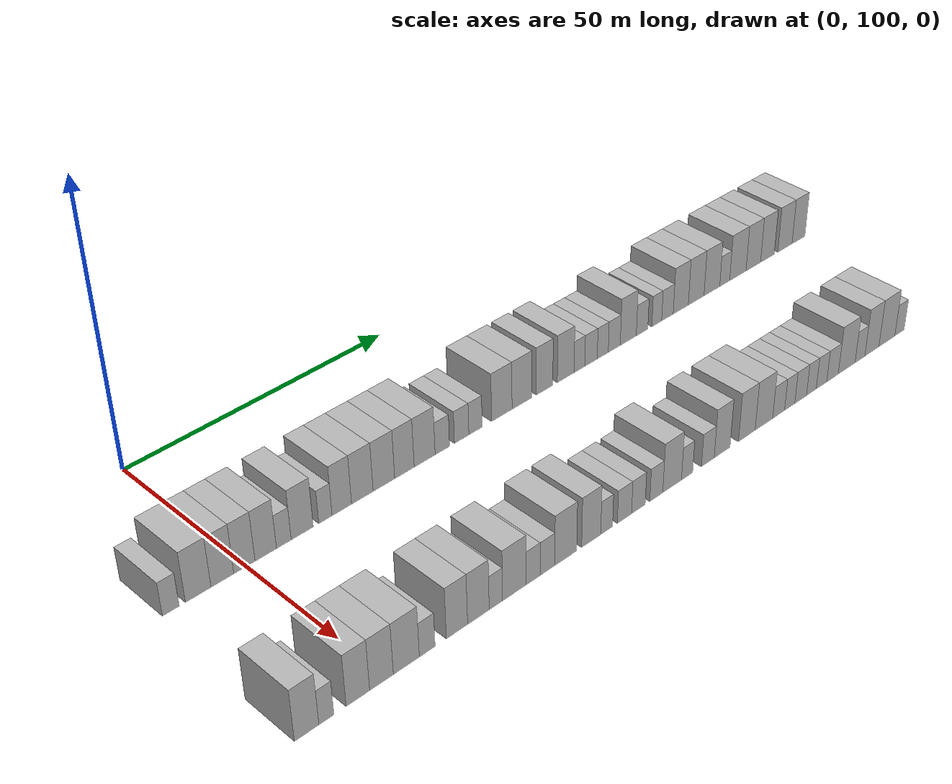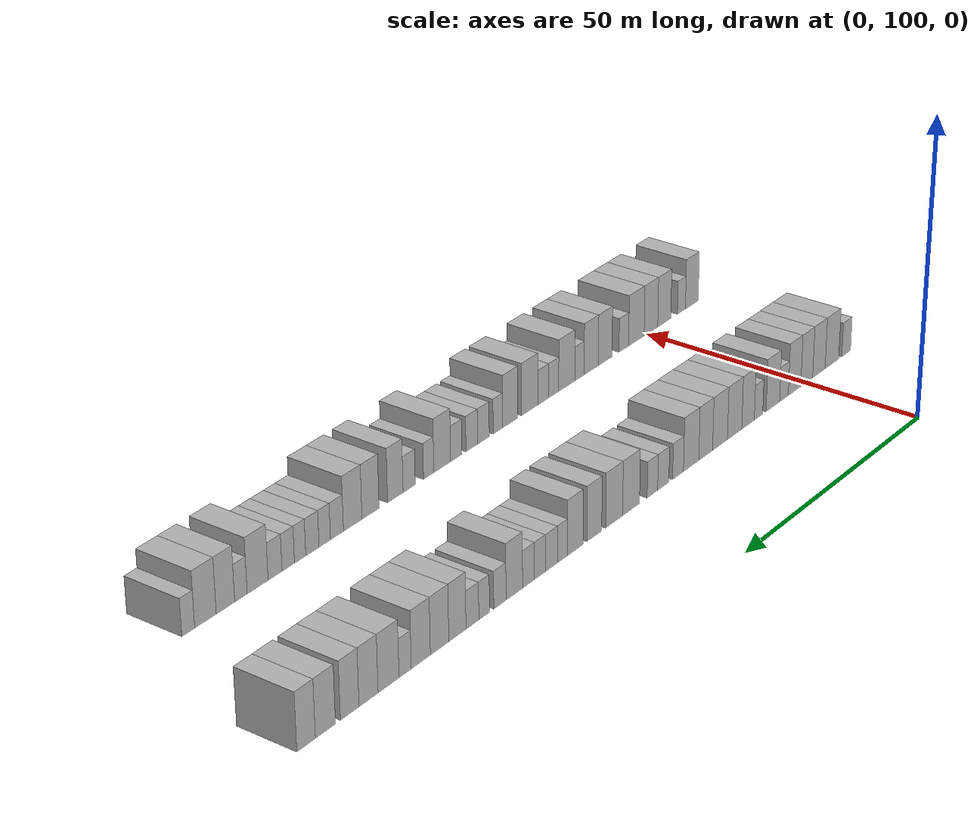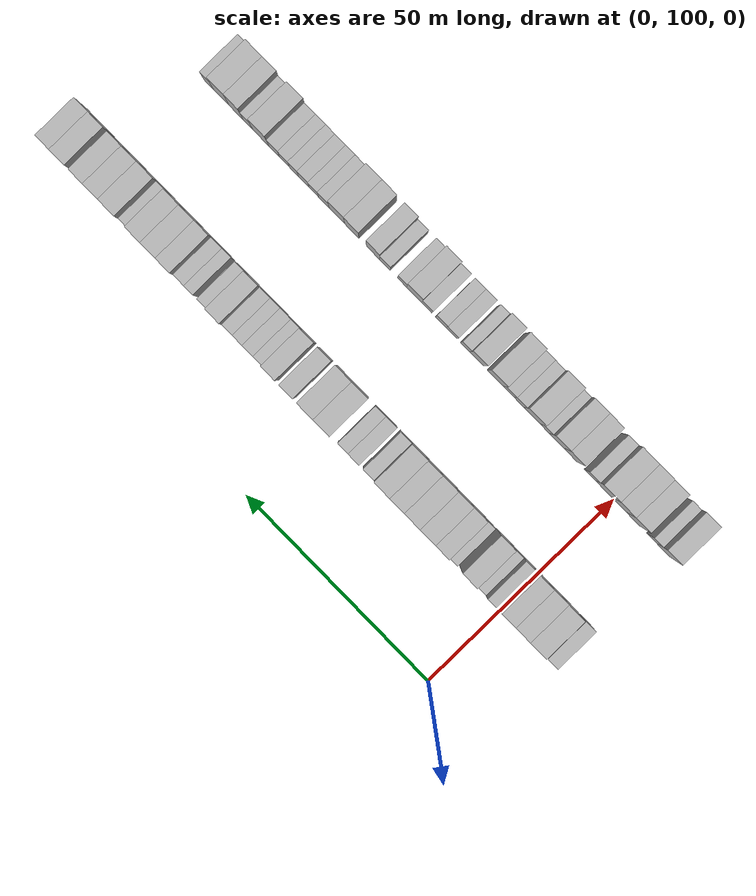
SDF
<sdf version="1.6">
 <world name="default">
  <model name="building_128">
   <static>1</static>
   <pose>25.0000 87.3961 0 0.000000 0.000000 0.000000</pose>
   <link name="link">
    <pose>0 0 3.00 0 0 0</pose>
    <collision name="collision"><geometry><box><size>10.0000 2.7502 6.0000</size></box></geometry></collision>
    <visual name="visual">
     <cast_shadows>0</cast_shadows>
     <geometry><box><size>10.0000 2.7502 6.0000</size></box></geometry>
     <material>
      <script>
       <uri>model://HANNAS_wall/materials/scripts</uri>
       <uri>model://HANNAS_wall/materials/textures</uri>
       <name>vrc/HANNAS_wall</name>
      </script>
     </material>
    </visual>
   </link>
  </model>
  <model name="building_129">
   <static>1</static>
   <pose>25.0000 91.8990 0 0.000000 0.000000 0.000000</pose>
   <link name="link">
    <pose>0 0 4.50 0 0 0</pose>
    <collision name="collision"><geometry><box><size>10.0000 4.2556 9.0000</size></box></geometry></collision>
    <visual name="visual">
     <cast_shadows>0</cast_shadows>
     <geometry><box><size>10.0000 4.2556 9.0000</size></box></geometry>
     <material>
      <script>
       <uri>model://HANNAS_wall/materials/scripts</uri>
       <uri>model://HANNAS_wall/materials/textures</uri>
       <name>vrc/HANNAS_wall</name>
      </script>
     </material>
    </visual>
   </link>
  </model>
  <model name="building_130">
   <static>1</static>
   <pose>25.0000 95.9598 0 0.000000 0.000000 0.000000</pose>
   <link name="link">
    <pose>0 0 4.50 0 0 0</pose>
    <collision name="collision"><geometry><box><size>10.0000 3.8661 9.0000</size></box></geometry></collision>
    <visual name="visual">
     <cast_shadows>0</cast_shadows>
     <geometry><box><size>10.0000 3.8661 9.0000</size></box></geometry>
     <material>
      <script>
       <uri>model://HANNAS_wall/materials/scripts</uri>
       <uri>model://HANNAS_wall/materials/textures</uri>
       <name>vrc/HANNAS_wall</name>
      </script>
     </material>
    </visual>
   </link>
  </model>
  <model name="building_131">
   <static>1</static>
   <pose>25.0000 99.7192 0 0.000000 0.000000 0.000000</pose>
   <link name="link">
    <pose>0 0 4.50 0 0 0</pose>
    <collision name="collision"><geometry><box><size>10.0000 3.6528 9.0000</size></box></geometry></collision>
    <visual name="visual">
     <cast_shadows>0</cast_shadows>
     <geometry><box><size>10.0000 3.6528 9.0000</size></box></geometry>
     <material>
      <script>
       <uri>model://HANNAS_wall/materials/scripts</uri>
       <uri>model://HANNAS_wall/materials/textures</uri>
       <name>vrc/HANNAS_wall</name>
      </script>
     </material>
    </visual>
   </link>
  </model>
  <model name="building_132">
   <static>1</static>
   <pose>25.0000 103.4227 0 0.000000 0.000000 0.000000</pose>
   <link name="link">
    <pose>0 0 4.50 0 0 0</pose>
    <collision name="collision"><geometry><box><size>10.0000 3.7542 9.0000</size></box></geometry></collision>
    <visual name="visual">
     <cast_shadows>0</cast_shadows>
     <geometry><box><size>10.0000 3.7542 9.0000</size></box></geometry>
     <material>
      <script>
       <uri>model://HANNAS_wall/materials/scripts</uri>
       <uri>model://HANNAS_wall/materials/textures</uri>
       <name>vrc/HANNAS_wall</name>
      </script>
     </material>
    </visual>
   </link>
  </model>
  <model name="building_133">
   <static>1</static>
   <pose>25.0000 106.6087 0 0.000000 0.000000 0.000000</pose>
   <link name="link">
    <pose>0 0 3.00 0 0 0</pose>
    <collision name="collision"><geometry><box><size>10.0000 2.6178 6.0000</size></box></geometry></collision>
    <visual name="visual">
     <cast_shadows>0</cast_shadows>
     <geometry><box><size>10.0000 2.6178 6.0000</size></box></geometry>
     <material>
      <script>
       <uri>model://HANNAS_wall/materials/scripts</uri>
       <uri>model://HANNAS_wall/materials/textures</uri>
       <name>vrc/HANNAS_wall</name>
      </script>
     </material>
    </visual>
   </link>
  </model>
  <model name="building_134">
   <static>1</static>
   <pose>25.0000 109.9118 0 0.000000 0.000000 0.000000</pose>
   <link name="link">
    <pose>0 0 4.50 0 0 0</pose>
    <collision name="collision"><geometry><box><size>10.0000 3.9884 9.0000</size></box></geometry></collision>
    <visual name="visual">
     <cast_shadows>0</cast_shadows>
     <geometry><box><size>10.0000 3.9884 9.0000</size></box></geometry>
     <material>
      <script>
       <uri>model://HANNAS_wall/materials/scripts</uri>
       <uri>model://HANNAS_wall/materials/textures</uri>
       <name>vrc/HANNAS_wall</name>
      </script>
     </material>
    </visual>
   </link>
  </model>
  <model name="building_135">
   <static>1</static>
   <pose>25.0000 114.1309 0 0.000000 0.000000 0.000000</pose>
   <link name="link">
    <pose>0 0 3.00 0 0 0</pose>
    <collision name="collision"><geometry><box><size>10.0000 2.4498 6.0000</size></box></geometry></collision>
    <visual name="visual">
     <cast_shadows>0</cast_shadows>
     <geometry><box><size>10.0000 2.4498 6.0000</size></box></geometry>
     <material>
      <script>
       <uri>model://HANNAS_wall/materials/scripts</uri>
       <uri>model://HANNAS_wall/materials/textures</uri>
       <name>vrc/HANNAS_wall</name>
      </script>
     </material>
    </visual>
   </link>
  </model>
  <model name="building_136">
   <static>1</static>
   <pose>25.0000 117.1711 0 0.000000 0.000000 0.000000</pose>
   <link name="link">
    <pose>0 0 4.50 0 0 0</pose>
    <collision name="collision"><geometry><box><size>10.0000 3.6306 9.0000</size></box></geometry></collision>
    <visual name="visual">
     <cast_shadows>0</cast_shadows>
     <geometry><box><size>10.0000 3.6306 9.0000</size></box></geometry>
     <material>
      <script>
       <uri>model://HANNAS_wall/materials/scripts</uri>
       <uri>model://HANNAS_wall/materials/textures</uri>
       <name>vrc/HANNAS_wall</name>
      </script>
     </material>
    </visual>
   </link>
  </model>
  <model name="building_137">
   <static>1</static>
   <pose>25.0000 121.0385 0 0.000000 0.000000 0.000000</pose>
   <link name="link">
    <pose>0 0 4.50 0 0 0</pose>
    <collision name="collision"><geometry><box><size>10.0000 4.1043 9.0000</size></box></geometry></collision>
    <visual name="visual">
     <cast_shadows>0</cast_shadows>
     <geometry><box><size>10.0000 4.1043 9.0000</size></box></geometry>
     <material>
      <script>
       <uri>model://HANNAS_wall/materials/scripts</uri>
       <uri>model://HANNAS_wall/materials/textures</uri>
       <name>vrc/HANNAS_wall</name>
      </script>
     </material>
    </visual>
   </link>
  </model>
  <model name="building_138">
   <static>1</static>
   <pose>25.0000 125.1760 0 0.000000 0.000000 0.000000</pose>
   <link name="link">
    <pose>0 0 4.50 0 0 0</pose>
    <collision name="collision"><geometry><box><size>10.0000 4.1706 9.0000</size></box></geometry></collision>
    <visual name="visual">
     <cast_shadows>0</cast_shadows>
     <geometry><box><size>10.0000 4.1706 9.0000</size></box></geometry>
     <material>
      <script>
       <uri>model://HANNAS_wall/materials/scripts</uri>
       <uri>model://HANNAS_wall/materials/textures</uri>
       <name>vrc/HANNAS_wall</name>
      </script>
     </material>
    </visual>
   </link>
  </model>
  <model name="building_139">
   <static>1</static>
   <pose>25.0000 129.1784 0 0.000000 0.000000 0.000000</pose>
   <link name="link">
    <pose>0 0 4.50 0 0 0</pose>
    <collision name="collision"><geometry><box><size>10.0000 3.8342 9.0000</size></box></geometry></collision>
    <visual name="visual">
     <cast_shadows>0</cast_shadows>
     <geometry><box><size>10.0000 3.8342 9.0000</size></box></geometry>
     <material>
      <script>
       <uri>model://HANNAS_wall/materials/scripts</uri>
       <uri>model://HANNAS_wall/materials/textures</uri>
       <name>vrc/HANNAS_wall</name>
      </script>
     </material>
    </visual>
   </link>
  </model>
  <model name="building_140">
   <static>1</static>
   <pose>25.0000 133.1956 0 0.000000 0.000000 0.000000</pose>
   <link name="link">
    <pose>0 0 4.50 0 0 0</pose>
    <collision name="collision"><geometry><box><size>10.0000 4.2002 9.0000</size></box></geometry></collision>
    <visual name="visual">
     <cast_shadows>0</cast_shadows>
     <geometry><box><size>10.0000 4.2002 9.0000</size></box></geometry>
     <material>
      <script>
       <uri>model://HANNAS_wall/materials/scripts</uri>
       <uri>model://HANNAS_wall/materials/textures</uri>
       <name>vrc/HANNAS_wall</name>
      </script>
     </material>
    </visual>
   </link>
  </model>
  <model name="building_141">
   <static>1</static>
   <pose>25.0000 136.7625 0 0.000000 0.000000 0.000000</pose>
   <link name="link">
    <pose>0 0 3.00 0 0 0</pose>
    <collision name="collision"><geometry><box><size>10.0000 2.9337 6.0000</size></box></geometry></collision>
    <visual name="visual">
     <cast_shadows>0</cast_shadows>
     <geometry><box><size>10.0000 2.9337 6.0000</size></box></geometry>
     <material>
      <script>
       <uri>model://HANNAS_wall/materials/scripts</uri>
       <uri>model://HANNAS_wall/materials/textures</uri>
       <name>vrc/HANNAS_wall</name>
      </script>
     </material>
    </visual>
   </link>
  </model>
  <model name="building_142">
   <static>1</static>
   <pose>25.0000 140.7261 0 0.000000 0.000000 0.000000</pose>
   <link name="link">
    <pose>0 0 3.00 0 0 0</pose>
    <collision name="collision"><geometry><box><size>10.0000 2.9936 6.0000</size></box></geometry></collision>
    <visual name="visual">
     <cast_shadows>0</cast_shadows>
     <geometry><box><size>10.0000 2.9936 6.0000</size></box></geometry>
     <material>
      <script>
       <uri>model://HANNAS_wall/materials/scripts</uri>
       <uri>model://HANNAS_wall/materials/textures</uri>
       <name>vrc/HANNAS_wall</name>
      </script>
     </material>
    </visual>
   </link>
  </model>
  <model name="building_143">
   <static>1</static>
   <pose>25.0000 143.6168 0 0.000000 0.000000 0.000000</pose>
   <link name="link">
    <pose>0 0 3.00 0 0 0</pose>
    <collision name="collision"><geometry><box><size>10.0000 2.7877 6.0000</size></box></geometry></collision>
    <visual name="visual">
     <cast_shadows>0</cast_shadows>
     <geometry><box><size>10.0000 2.7877 6.0000</size></box></geometry>
     <material>
      <script>
       <uri>model://HANNAS_wall/materials/scripts</uri>
       <uri>model://HANNAS_wall/materials/textures</uri>
       <name>vrc/HANNAS_wall</name>
      </script>
     </material>
    </visual>
   </link>
  </model>
  <model name="building_144">
   <static>1</static>
   <pose>25.0000 149.2042 0 0.000000 0.000000 0.000000</pose>
   <link name="link">
    <pose>0 0 4.50 0 0 0</pose>
    <collision name="collision"><geometry><box><size>10.0000 4.3871 9.0000</size></box></geometry></collision>
    <visual name="visual">
     <cast_shadows>0</cast_shadows>
     <geometry><box><size>10.0000 4.3871 9.0000</size></box></geometry>
     <material>
      <script>
       <uri>model://HANNAS_wall/materials/scripts</uri>
       <uri>model://HANNAS_wall/materials/textures</uri>
       <name>vrc/HANNAS_wall</name>
      </script>
     </material>
    </visual>
   </link>
  </model>
  <model name="building_145">
   <static>1</static>
   <pose>25.0000 153.5591 0 0.000000 0.000000 0.000000</pose>
   <link name="link">
    <pose>0 0 4.50 0 0 0</pose>
    <collision name="collision"><geometry><box><size>10.0000 4.3227 9.0000</size></box></geometry></collision>
    <visual name="visual">
     <cast_shadows>0</cast_shadows>
     <geometry><box><size>10.0000 4.3227 9.0000</size></box></geometry>
     <material>
      <script>
       <uri>model://HANNAS_wall/materials/scripts</uri>
       <uri>model://HANNAS_wall/materials/textures</uri>
       <name>vrc/HANNAS_wall</name>
      </script>
     </material>
    </visual>
   </link>
  </model>
  <model name="building_146">
   <static>1</static>
   <pose>25.0000 158.5569 0 0.000000 0.000000 0.000000</pose>
   <link name="link">
    <pose>0 0 4.50 0 0 0</pose>
    <collision name="collision"><geometry><box><size>10.0000 3.6729 9.0000</size></box></geometry></collision>
    <visual name="visual">
     <cast_shadows>0</cast_shadows>
     <geometry><box><size>10.0000 3.6729 9.0000</size></box></geometry>
     <material>
      <script>
       <uri>model://HANNAS_wall/materials/scripts</uri>
       <uri>model://HANNAS_wall/materials/textures</uri>
       <name>vrc/HANNAS_wall</name>
      </script>
     </material>
    </visual>
   </link>
  </model>
  <model name="building_147">
   <static>1</static>
   <pose>25.0000 163.3041 0 0.000000 0.000000 0.000000</pose>
   <link name="link">
    <pose>0 0 4.50 0 0 0</pose>
    <collision name="collision"><geometry><box><size>10.0000 3.8214 9.0000</size></box></geometry></collision>
    <visual name="visual">
     <cast_shadows>0</cast_shadows>
     <geometry><box><size>10.0000 3.8214 9.0000</size></box></geometry>
     <material>
      <script>
       <uri>model://HANNAS_wall/materials/scripts</uri>
       <uri>model://HANNAS_wall/materials/textures</uri>
       <name>vrc/HANNAS_wall</name>
      </script>
     </material>
    </visual>
   </link>
  </model>
  <model name="building_148">
   <static>1</static>
   <pose>25.0000 166.4554 0 0.000000 0.000000 0.000000</pose>
   <link name="link">
    <pose>0 0 3.00 0 0 0</pose>
    <collision name="collision"><geometry><box><size>10.0000 2.4813 6.0000</size></box></geometry></collision>
    <visual name="visual">
     <cast_shadows>0</cast_shadows>
     <geometry><box><size>10.0000 2.4813 6.0000</size></box></geometry>
     <material>
      <script>
       <uri>model://HANNAS_wall/materials/scripts</uri>
       <uri>model://HANNAS_wall/materials/textures</uri>
       <name>vrc/HANNAS_wall</name>
      </script>
     </material>
    </visual>
   </link>
  </model>
  <model name="building_149">
   <static>1</static>
   <pose>25.0000 169.1382 0 0.000000 0.000000 0.000000</pose>
   <link name="link">
    <pose>0 0 3.00 0 0 0</pose>
    <collision name="collision"><geometry><box><size>10.0000 2.8843 6.0000</size></box></geometry></collision>
    <visual name="visual">
     <cast_shadows>0</cast_shadows>
     <geometry><box><size>10.0000 2.8843 6.0000</size></box></geometry>
     <material>
      <script>
       <uri>model://HANNAS_wall/materials/scripts</uri>
       <uri>model://HANNAS_wall/materials/textures</uri>
       <name>vrc/HANNAS_wall</name>
      </script>
     </material>
    </visual>
   </link>
  </model>
  <model name="building_150">
   <static>1</static>
   <pose>25.0000 171.8846 0 0.000000 0.000000 0.000000</pose>
   <link name="link">
    <pose>0 0 3.00 0 0 0</pose>
    <collision name="collision"><geometry><box><size>10.0000 2.6085 6.0000</size></box></geometry></collision>
    <visual name="visual">
     <cast_shadows>0</cast_shadows>
     <geometry><box><size>10.0000 2.6085 6.0000</size></box></geometry>
     <material>
      <script>
       <uri>model://HANNAS_wall/materials/scripts</uri>
       <uri>model://HANNAS_wall/materials/textures</uri>
       <name>vrc/HANNAS_wall</name>
      </script>
     </material>
    </visual>
   </link>
  </model>
  <model name="building_151">
   <static>1</static>
   <pose>25.0000 174.6094 0 0.000000 0.000000 0.000000</pose>
   <link name="link">
    <pose>0 0 3.00 0 0 0</pose>
    <collision name="collision"><geometry><box><size>10.0000 2.8411 6.0000</size></box></geometry></collision>
    <visual name="visual">
     <cast_shadows>0</cast_shadows>
     <geometry><box><size>10.0000 2.8411 6.0000</size></box></geometry>
     <material>
      <script>
       <uri>model://HANNAS_wall/materials/scripts</uri>
       <uri>model://HANNAS_wall/materials/textures</uri>
       <name>vrc/HANNAS_wall</name>
      </script>
     </material>
    </visual>
   </link>
  </model>
  <model name="building_152">
   <static>1</static>
   <pose>25.0000 177.9616 0 0.000000 0.000000 0.000000</pose>
   <link name="link">
    <pose>0 0 4.50 0 0 0</pose>
    <collision name="collision"><geometry><box><size>10.0000 3.8633 9.0000</size></box></geometry></collision>
    <visual name="visual">
     <cast_shadows>0</cast_shadows>
     <geometry><box><size>10.0000 3.8633 9.0000</size></box></geometry>
     <material>
      <script>
       <uri>model://HANNAS_wall/materials/scripts</uri>
       <uri>model://HANNAS_wall/materials/textures</uri>
       <name>vrc/HANNAS_wall</name>
      </script>
     </material>
    </visual>
   </link>
  </model>
  <model name="building_153">
   <static>1</static>
   <pose>25.0000 181.3048 0 0.000000 0.000000 0.000000</pose>
   <link name="link">
    <pose>0 0 3.00 0 0 0</pose>
    <collision name="collision"><geometry><box><size>10.0000 2.8230 6.0000</size></box></geometry></collision>
    <visual name="visual">
     <cast_shadows>0</cast_shadows>
     <geometry><box><size>10.0000 2.8230 6.0000</size></box></geometry>
     <material>
      <script>
       <uri>model://HANNAS_wall/materials/scripts</uri>
       <uri>model://HANNAS_wall/materials/textures</uri>
       <name>vrc/HANNAS_wall</name>
      </script>
     </material>
    </visual>
   </link>
  </model>
  <model name="building_154">
   <static>1</static>
   <pose>25.0000 184.9319 0 0.000000 0.000000 0.000000</pose>
   <link name="link">
    <pose>0 0 3.00 0 0 0</pose>
    <collision name="collision"><geometry><box><size>10.0000 2.4312 6.0000</size></box></geometry></collision>
    <visual name="visual">
     <cast_shadows>0</cast_shadows>
     <geometry><box><size>10.0000 2.4312 6.0000</size></box></geometry>
     <material>
      <script>
       <uri>model://HANNAS_wall/materials/scripts</uri>
       <uri>model://HANNAS_wall/materials/textures</uri>
       <name>vrc/HANNAS_wall</name>
      </script>
     </material>
    </visual>
   </link>
  </model>
  <model name="building_155">
   <static>1</static>
   <pose>25.0000 187.5969 0 0.000000 0.000000 0.000000</pose>
   <link name="link">
    <pose>0 0 3.00 0 0 0</pose>
    <collision name="collision"><geometry><box><size>10.0000 2.8987 6.0000</size></box></geometry></collision>
    <visual name="visual">
     <cast_shadows>0</cast_shadows>
     <geometry><box><size>10.0000 2.8987 6.0000</size></box></geometry>
     <material>
      <script>
       <uri>model://HANNAS_wall/materials/scripts</uri>
       <uri>model://HANNAS_wall/materials/textures</uri>
       <name>vrc/HANNAS_wall</name>
      </script>
     </material>
    </visual>
   </link>
  </model>
  <model name="building_156">
   <static>1</static>
   <pose>25.0000 190.9632 0 0.000000 0.000000 0.000000</pose>
   <link name="link">
    <pose>0 0 4.50 0 0 0</pose>
    <collision name="collision"><geometry><box><size>10.0000 3.8340 9.0000</size></box></geometry></collision>
    <visual name="visual">
     <cast_shadows>0</cast_shadows>
     <geometry><box><size>10.0000 3.8340 9.0000</size></box></geometry>
     <material>
      <script>
       <uri>model://HANNAS_wall/materials/scripts</uri>
       <uri>model://HANNAS_wall/materials/textures</uri>
       <name>vrc/HANNAS_wall</name>
      </script>
     </material>
    </visual>
   </link>
  </model>
  <model name="building_157">
   <static>1</static>
   <pose>25.0000 194.9033 0 0.000000 0.000000 0.000000</pose>
   <link name="link">
    <pose>0 0 4.50 0 0 0</pose>
    <collision name="collision"><geometry><box><size>10.0000 4.0461 9.0000</size></box></geometry></collision>
    <visual name="visual">
     <cast_shadows>0</cast_shadows>
     <geometry><box><size>10.0000 4.0461 9.0000</size></box></geometry>
     <material>
      <script>
       <uri>model://HANNAS_wall/materials/scripts</uri>
       <uri>model://HANNAS_wall/materials/textures</uri>
       <name>vrc/HANNAS_wall</name>
      </script>
     </material>
    </visual>
   </link>
  </model>
  <model name="building_158">
   <static>1</static>
   <pose>25.0000 198.9848 0 0.000000 0.000000 0.000000</pose>
   <link name="link">
    <pose>0 0 4.50 0 0 0</pose>
    <collision name="collision"><geometry><box><size>10.0000 4.1169 9.0000</size></box></geometry></collision>
    <visual name="visual">
     <cast_shadows>0</cast_shadows>
     <geometry><box><size>10.0000 4.1169 9.0000</size></box></geometry>
     <material>
      <script>
       <uri>model://HANNAS_wall/materials/scripts</uri>
       <uri>model://HANNAS_wall/materials/textures</uri>
       <name>vrc/HANNAS_wall</name>
      </script>
     </material>
    </visual>
   </link>
  </model>
  <model name="building_159">
   <static>1</static>
   <pose>25.0000 202.3625 0 0.000000 0.000000 0.000000</pose>
   <link name="link">
    <pose>0 0 3.00 0 0 0</pose>
    <collision name="collision"><geometry><box><size>10.0000 2.6386 6.0000</size></box></geometry></collision>
    <visual name="visual">
     <cast_shadows>0</cast_shadows>
     <geometry><box><size>10.0000 2.6386 6.0000</size></box></geometry>
     <material>
      <script>
       <uri>model://HANNAS_wall/materials/scripts</uri>
       <uri>model://HANNAS_wall/materials/textures</uri>
       <name>vrc/HANNAS_wall</name>
      </script>
     </material>
    </visual>
   </link>
  </model>
  <model name="building_160">
   <static>1</static>
   <pose>25.0000 205.8802 0 0.000000 0.000000 0.000000</pose>
   <link name="link">
    <pose>0 0 4.50 0 0 0</pose>
    <collision name="collision"><geometry><box><size>10.0000 4.3968 9.0000</size></box></geometry></collision>
    <visual name="visual">
     <cast_shadows>0</cast_shadows>
     <geometry><box><size>10.0000 4.3968 9.0000</size></box></geometry>
     <material>
      <script>
       <uri>model://HANNAS_wall/materials/scripts</uri>
       <uri>model://HANNAS_wall/materials/textures</uri>
       <name>vrc/HANNAS_wall</name>
      </script>
     </material>
    </visual>
   </link>
  </model>
  <model name="building_161">
   <static>1</static>
   <pose>25.0000 210.0567 0 0.000000 0.000000 0.000000</pose>
   <link name="link">
    <pose>0 0 4.50 0 0 0</pose>
    <collision name="collision"><geometry><box><size>10.0000 3.9562 9.0000</size></box></geometry></collision>
    <visual name="visual">
     <cast_shadows>0</cast_shadows>
     <geometry><box><size>10.0000 3.9562 9.0000</size></box></geometry>
     <material>
      <script>
       <uri>model://HANNAS_wall/materials/scripts</uri>
       <uri>model://HANNAS_wall/materials/textures</uri>
       <name>vrc/HANNAS_wall</name>
      </script>
     </material>
    </visual>
   </link>
  </model>
  <model name="building_162">
   <static>1</static>
   <pose>25.0000 213.9309 0 0.000000 0.000000 0.000000</pose>
   <link name="link">
    <pose>0 0 4.50 0 0 0</pose>
    <collision name="collision"><geometry><box><size>10.0000 3.7922 9.0000</size></box></geometry></collision>
    <visual name="visual">
     <cast_shadows>0</cast_shadows>
     <geometry><box><size>10.0000 3.7922 9.0000</size></box></geometry>
     <material>
      <script>
       <uri>model://HANNAS_wall/materials/scripts</uri>
       <uri>model://HANNAS_wall/materials/textures</uri>
       <name>vrc/HANNAS_wall</name>
      </script>
     </material>
    </visual>
   </link>
  </model>
  <model name="building_163">
   <static>1</static>
   <pose>25.0000 218.8381 0 0.000000 0.000000 0.000000</pose>
   <link name="link">
    <pose>0 0 4.50 0 0 0</pose>
    <collision name="collision"><geometry><box><size>10.0000 4.0223 9.0000</size></box></geometry></collision>
    <visual name="visual">
     <cast_shadows>0</cast_shadows>
     <geometry><box><size>10.0000 4.0223 9.0000</size></box></geometry>
     <material>
      <script>
       <uri>model://HANNAS_wall/materials/scripts</uri>
       <uri>model://HANNAS_wall/materials/textures</uri>
       <name>vrc/HANNAS_wall</name>
      </script>
     </material>
    </visual>
   </link>
  </model>
  <model name="building_164">
   <static>1</static>
   <pose>25.0000 222.6817 0 0.000000 0.000000 0.000000</pose>
   <link name="link">
    <pose>0 0 4.50 0 0 0</pose>
    <collision name="collision"><geometry><box><size>10.0000 3.6650 9.0000</size></box></geometry></collision>
    <visual name="visual">
     <cast_shadows>0</cast_shadows>
     <geometry><box><size>10.0000 3.6650 9.0000</size></box></geometry>
     <material>
      <script>
       <uri>model://HANNAS_wall/materials/scripts</uri>
       <uri>model://HANNAS_wall/materials/textures</uri>
       <name>vrc/HANNAS_wall</name>
      </script>
     </material>
    </visual>
   </link>
  </model>
  <model name="building_366">
   <static>1</static>
   <pose>55.0000 86.6366 0 0.000000 0.000000 0.000000</pose>
   <link name="link">
    <pose>0 0 4.50 0 0 0</pose>
    <collision name="collision"><geometry><box><size>10.0000 3.8889 9.0000</size></box></geometry></collision>
    <visual name="visual">
     <cast_shadows>0</cast_shadows>
     <geometry><box><size>10.0000 3.8889 9.0000</size></box></geometry>
     <material>
      <script>
       <uri>model://HANNAS_wall/materials/scripts</uri>
       <uri>model://HANNAS_wall/materials/textures</uri>
       <name>vrc/HANNAS_wall</name>
      </script>
     </material>
    </visual>
   </link>
  </model>
  <model name="building_367">
   <static>1</static>
   <pose>55.0000 89.7889 0 0.000000 0.000000 0.000000</pose>
   <link name="link">
    <pose>0 0 3.00 0 0 0</pose>
    <collision name="collision"><geometry><box><size>10.0000 2.4158 6.0000</size></box></geometry></collision>
    <visual name="visual">
     <cast_shadows>0</cast_shadows>
     <geometry><box><size>10.0000 2.4158 6.0000</size></box></geometry>
     <material>
      <script>
       <uri>model://HANNAS_wall/materials/scripts</uri>
       <uri>model://HANNAS_wall/materials/textures</uri>
       <name>vrc/HANNAS_wall</name>
      </script>
     </material>
    </visual>
   </link>
  </model>
  <model name="building_368">
   <static>1</static>
   <pose>55.0000 94.9438 0 0.000000 0.000000 0.000000</pose>
   <link name="link">
    <pose>0 0 4.50 0 0 0</pose>
    <collision name="collision"><geometry><box><size>10.0000 3.8940 9.0000</size></box></geometry></collision>
    <visual name="visual">
     <cast_shadows>0</cast_shadows>
     <geometry><box><size>10.0000 3.8940 9.0000</size></box></geometry>
     <material>
      <script>
       <uri>model://HANNAS_wall/materials/scripts</uri>
       <uri>model://HANNAS_wall/materials/textures</uri>
       <name>vrc/HANNAS_wall</name>
      </script>
     </material>
    </visual>
   </link>
  </model>
  <model name="building_369">
   <static>1</static>
   <pose>55.0000 98.8944 0 0.000000 0.000000 0.000000</pose>
   <link name="link">
    <pose>0 0 4.50 0 0 0</pose>
    <collision name="collision"><geometry><box><size>10.0000 4.0072 9.0000</size></box></geometry></collision>
    <visual name="visual">
     <cast_shadows>0</cast_shadows>
     <geometry><box><size>10.0000 4.0072 9.0000</size></box></geometry>
     <material>
      <script>
       <uri>model://HANNAS_wall/materials/scripts</uri>
       <uri>model://HANNAS_wall/materials/textures</uri>
       <name>vrc/HANNAS_wall</name>
      </script>
     </material>
    </visual>
   </link>
  </model>
  <model name="building_370">
   <static>1</static>
   <pose>55.0000 103.1457 0 0.000000 0.000000 0.000000</pose>
   <link name="link">
    <pose>0 0 4.50 0 0 0</pose>
    <collision name="collision"><geometry><box><size>10.0000 4.4955 9.0000</size></box></geometry></collision>
    <visual name="visual">
     <cast_shadows>0</cast_shadows>
     <geometry><box><size>10.0000 4.4955 9.0000</size></box></geometry>
     <material>
      <script>
       <uri>model://HANNAS_wall/materials/scripts</uri>
       <uri>model://HANNAS_wall/materials/textures</uri>
       <name>vrc/HANNAS_wall</name>
      </script>
     </material>
    </visual>
   </link>
  </model>
  <model name="building_371">
   <static>1</static>
   <pose>55.0000 106.7752 0 0.000000 0.000000 0.000000</pose>
   <link name="link">
    <pose>0 0 3.00 0 0 0</pose>
    <collision name="collision"><geometry><box><size>10.0000 2.7635 6.0000</size></box></geometry></collision>
    <visual name="visual">
     <cast_shadows>0</cast_shadows>
     <geometry><box><size>10.0000 2.7635 6.0000</size></box></geometry>
     <material>
      <script>
       <uri>model://HANNAS_wall/materials/scripts</uri>
       <uri>model://HANNAS_wall/materials/textures</uri>
       <name>vrc/HANNAS_wall</name>
      </script>
     </material>
    </visual>
   </link>
  </model>
  <model name="building_372">
   <static>1</static>
   <pose>55.0000 112.0783 0 0.000000 0.000000 0.000000</pose>
   <link name="link">
    <pose>0 0 4.50 0 0 0</pose>
    <collision name="collision"><geometry><box><size>10.0000 3.8425 9.0000</size></box></geometry></collision>
    <visual name="visual">
     <cast_shadows>0</cast_shadows>
     <geometry><box><size>10.0000 3.8425 9.0000</size></box></geometry>
     <material>
      <script>
       <uri>model://HANNAS_wall/materials/scripts</uri>
       <uri>model://HANNAS_wall/materials/textures</uri>
       <name>vrc/HANNAS_wall</name>
      </script>
     </material>
    </visual>
   </link>
  </model>
  <model name="building_373">
   <static>1</static>
   <pose>55.0000 115.9848 0 0.000000 0.000000 0.000000</pose>
   <link name="link">
    <pose>0 0 4.50 0 0 0</pose>
    <collision name="collision"><geometry><box><size>10.0000 3.9705 9.0000</size></box></geometry></collision>
    <visual name="visual">
     <cast_shadows>0</cast_shadows>
     <geometry><box><size>10.0000 3.9705 9.0000</size></box></geometry>
     <material>
      <script>
       <uri>model://HANNAS_wall/materials/scripts</uri>
       <uri>model://HANNAS_wall/materials/textures</uri>
       <name>vrc/HANNAS_wall</name>
      </script>
     </material>
    </visual>
   </link>
  </model>
  <model name="building_374">
   <static>1</static>
   <pose>55.0000 119.2194 0 0.000000 0.000000 0.000000</pose>
   <link name="link">
    <pose>0 0 3.00 0 0 0</pose>
    <collision name="collision"><geometry><box><size>10.0000 2.4987 6.0000</size></box></geometry></collision>
    <visual name="visual">
     <cast_shadows>0</cast_shadows>
     <geometry><box><size>10.0000 2.4987 6.0000</size></box></geometry>
     <material>
      <script>
       <uri>model://HANNAS_wall/materials/scripts</uri>
       <uri>model://HANNAS_wall/materials/textures</uri>
       <name>vrc/HANNAS_wall</name>
      </script>
     </material>
    </visual>
   </link>
  </model>
  <model name="building_375">
   <static>1</static>
   <pose>55.0000 122.7119 0 0.000000 0.000000 0.000000</pose>
   <link name="link">
    <pose>0 0 4.50 0 0 0</pose>
    <collision name="collision"><geometry><box><size>10.0000 4.4862 9.0000</size></box></geometry></collision>
    <visual name="visual">
     <cast_shadows>0</cast_shadows>
     <geometry><box><size>10.0000 4.4862 9.0000</size></box></geometry>
     <material>
      <script>
       <uri>model://HANNAS_wall/materials/scripts</uri>
       <uri>model://HANNAS_wall/materials/textures</uri>
       <name>vrc/HANNAS_wall</name>
      </script>
     </material>
    </visual>
   </link>
  </model>
  <model name="building_376">
   <static>1</static>
   <pose>55.0000 126.3049 0 0.000000 0.000000 0.000000</pose>
   <link name="link">
    <pose>0 0 3.00 0 0 0</pose>
    <collision name="collision"><geometry><box><size>10.0000 2.6999 6.0000</size></box></geometry></collision>
    <visual name="visual">
     <cast_shadows>0</cast_shadows>
     <geometry><box><size>10.0000 2.6999 6.0000</size></box></geometry>
     <material>
      <script>
       <uri>model://HANNAS_wall/materials/scripts</uri>
       <uri>model://HANNAS_wall/materials/textures</uri>
       <name>vrc/HANNAS_wall</name>
      </script>
     </material>
    </visual>
   </link>
  </model>
  <model name="building_377">
   <static>1</static>
   <pose>55.0000 129.0889 0 0.000000 0.000000 0.000000</pose>
   <link name="link">
    <pose>0 0 3.00 0 0 0</pose>
    <collision name="collision"><geometry><box><size>10.0000 2.8681 6.0000</size></box></geometry></collision>
    <visual name="visual">
     <cast_shadows>0</cast_shadows>
     <geometry><box><size>10.0000 2.8681 6.0000</size></box></geometry>
     <material>
      <script>
       <uri>model://HANNAS_wall/materials/scripts</uri>
       <uri>model://HANNAS_wall/materials/textures</uri>
       <name>vrc/HANNAS_wall</name>
      </script>
     </material>
    </visual>
   </link>
  </model>
  <model name="building_378">
   <static>1</static>
   <pose>55.0000 132.7047 0 0.000000 0.000000 0.000000</pose>
   <link name="link">
    <pose>0 0 4.50 0 0 0</pose>
    <collision name="collision"><geometry><box><size>10.0000 4.3636 9.0000</size></box></geometry></collision>
    <visual name="visual">
     <cast_shadows>0</cast_shadows>
     <geometry><box><size>10.0000 4.3636 9.0000</size></box></geometry>
     <material>
      <script>
       <uri>model://HANNAS_wall/materials/scripts</uri>
       <uri>model://HANNAS_wall/materials/textures</uri>
       <name>vrc/HANNAS_wall</name>
      </script>
     </material>
    </visual>
   </link>
  </model>
  <model name="building_379">
   <static>1</static>
   <pose>55.0000 137.8243 0 0.000000 0.000000 0.000000</pose>
   <link name="link">
    <pose>0 0 4.50 0 0 0</pose>
    <collision name="collision"><geometry><box><size>10.0000 3.8755 9.0000</size></box></geometry></collision>
    <visual name="visual">
     <cast_shadows>0</cast_shadows>
     <geometry><box><size>10.0000 3.8755 9.0000</size></box></geometry>
     <material>
      <script>
       <uri>model://HANNAS_wall/materials/scripts</uri>
       <uri>model://HANNAS_wall/materials/textures</uri>
       <name>vrc/HANNAS_wall</name>
      </script>
     </material>
    </visual>
   </link>
  </model>
  <model name="building_380">
   <static>1</static>
   <pose>55.0000 140.9935 0 0.000000 0.000000 0.000000</pose>
   <link name="link">
    <pose>0 0 3.00 0 0 0</pose>
    <collision name="collision"><geometry><box><size>10.0000 2.4629 6.0000</size></box></geometry></collision>
    <visual name="visual">
     <cast_shadows>0</cast_shadows>
     <geometry><box><size>10.0000 2.4629 6.0000</size></box></geometry>
     <material>
      <script>
       <uri>model://HANNAS_wall/materials/scripts</uri>
       <uri>model://HANNAS_wall/materials/textures</uri>
       <name>vrc/HANNAS_wall</name>
      </script>
     </material>
    </visual>
   </link>
  </model>
  <model name="building_381">
   <static>1</static>
   <pose>55.0000 144.7202 0 0.000000 0.000000 0.000000</pose>
   <link name="link">
    <pose>0 0 3.00 0 0 0</pose>
    <collision name="collision"><geometry><box><size>10.0000 2.9907 6.0000</size></box></geometry></collision>
    <visual name="visual">
     <cast_shadows>0</cast_shadows>
     <geometry><box><size>10.0000 2.9907 6.0000</size></box></geometry>
     <material>
      <script>
       <uri>model://HANNAS_wall/materials/scripts</uri>
       <uri>model://HANNAS_wall/materials/textures</uri>
       <name>vrc/HANNAS_wall</name>
      </script>
     </material>
    </visual>
   </link>
  </model>
  <model name="building_382">
   <static>1</static>
   <pose>55.0000 147.6666 0 0.000000 0.000000 0.000000</pose>
   <link name="link">
    <pose>0 0 3.00 0 0 0</pose>
    <collision name="collision"><geometry><box><size>10.0000 2.9020 6.0000</size></box></geometry></collision>
    <visual name="visual">
     <cast_shadows>0</cast_shadows>
     <geometry><box><size>10.0000 2.9020 6.0000</size></box></geometry>
     <material>
      <script>
       <uri>model://HANNAS_wall/materials/scripts</uri>
       <uri>model://HANNAS_wall/materials/textures</uri>
       <name>vrc/HANNAS_wall</name>
      </script>
     </material>
    </visual>
   </link>
  </model>
  <model name="building_383">
   <static>1</static>
   <pose>55.0000 151.5273 0 0.000000 0.000000 0.000000</pose>
   <link name="link">
    <pose>0 0 3.00 0 0 0</pose>
    <collision name="collision"><geometry><box><size>10.0000 2.8194 6.0000</size></box></geometry></collision>
    <visual name="visual">
     <cast_shadows>0</cast_shadows>
     <geometry><box><size>10.0000 2.8194 6.0000</size></box></geometry>
     <material>
      <script>
       <uri>model://HANNAS_wall/materials/scripts</uri>
       <uri>model://HANNAS_wall/materials/textures</uri>
       <name>vrc/HANNAS_wall</name>
      </script>
     </material>
    </visual>
   </link>
  </model>
  <model name="building_384">
   <static>1</static>
   <pose>55.0000 154.9959 0 0.000000 0.000000 0.000000</pose>
   <link name="link">
    <pose>0 0 4.50 0 0 0</pose>
    <collision name="collision"><geometry><box><size>10.0000 4.1179 9.0000</size></box></geometry></collision>
    <visual name="visual">
     <cast_shadows>0</cast_shadows>
     <geometry><box><size>10.0000 4.1179 9.0000</size></box></geometry>
     <material>
      <script>
       <uri>model://HANNAS_wall/materials/scripts</uri>
       <uri>model://HANNAS_wall/materials/textures</uri>
       <name>vrc/HANNAS_wall</name>
      </script>
     </material>
    </visual>
   </link>
  </model>
  <model name="building_385">
   <static>1</static>
   <pose>55.0000 158.3052 0 0.000000 0.000000 0.000000</pose>
   <link name="link">
    <pose>0 0 3.00 0 0 0</pose>
    <collision name="collision"><geometry><box><size>10.0000 2.5007 6.0000</size></box></geometry></collision>
    <visual name="visual">
     <cast_shadows>0</cast_shadows>
     <geometry><box><size>10.0000 2.5007 6.0000</size></box></geometry>
     <material>
      <script>
       <uri>model://HANNAS_wall/materials/scripts</uri>
       <uri>model://HANNAS_wall/materials/textures</uri>
       <name>vrc/HANNAS_wall</name>
      </script>
     </material>
    </visual>
   </link>
  </model>
  <model name="building_386">
   <static>1</static>
   <pose>55.0000 163.0096 0 0.000000 0.000000 0.000000</pose>
   <link name="link">
    <pose>0 0 3.00 0 0 0</pose>
    <collision name="collision"><geometry><box><size>10.0000 2.9079 6.0000</size></box></geometry></collision>
    <visual name="visual">
     <cast_shadows>0</cast_shadows>
     <geometry><box><size>10.0000 2.9079 6.0000</size></box></geometry>
     <material>
      <script>
       <uri>model://HANNAS_wall/materials/scripts</uri>
       <uri>model://HANNAS_wall/materials/textures</uri>
       <name>vrc/HANNAS_wall</name>
      </script>
     </material>
    </visual>
   </link>
  </model>
  <model name="building_387">
   <static>1</static>
   <pose>55.0000 166.2905 0 0.000000 0.000000 0.000000</pose>
   <link name="link">
    <pose>0 0 4.50 0 0 0</pose>
    <collision name="collision"><geometry><box><size>10.0000 3.6540 9.0000</size></box></geometry></collision>
    <visual name="visual">
     <cast_shadows>0</cast_shadows>
     <geometry><box><size>10.0000 3.6540 9.0000</size></box></geometry>
     <material>
      <script>
       <uri>model://HANNAS_wall/materials/scripts</uri>
       <uri>model://HANNAS_wall/materials/textures</uri>
       <name>vrc/HANNAS_wall</name>
      </script>
     </material>
    </visual>
   </link>
  </model>
  <model name="building_388">
   <static>1</static>
   <pose>55.0000 172.0921 0 0.000000 0.000000 0.000000</pose>
   <link name="link">
    <pose>0 0 4.50 0 0 0</pose>
    <collision name="collision"><geometry><box><size>10.0000 3.9493 9.0000</size></box></geometry></collision>
    <visual name="visual">
     <cast_shadows>0</cast_shadows>
     <geometry><box><size>10.0000 3.9493 9.0000</size></box></geometry>
     <material>
      <script>
       <uri>model://HANNAS_wall/materials/scripts</uri>
       <uri>model://HANNAS_wall/materials/textures</uri>
       <name>vrc/HANNAS_wall</name>
      </script>
     </material>
    </visual>
   </link>
  </model>
  <model name="building_389">
   <static>1</static>
   <pose>55.0000 176.1802 0 0.000000 0.000000 0.000000</pose>
   <link name="link">
    <pose>0 0 4.50 0 0 0</pose>
    <collision name="collision"><geometry><box><size>10.0000 4.2268 9.0000</size></box></geometry></collision>
    <visual name="visual">
     <cast_shadows>0</cast_shadows>
     <geometry><box><size>10.0000 4.2268 9.0000</size></box></geometry>
     <material>
      <script>
       <uri>model://HANNAS_wall/materials/scripts</uri>
       <uri>model://HANNAS_wall/materials/textures</uri>
       <name>vrc/HANNAS_wall</name>
      </script>
     </material>
    </visual>
   </link>
  </model>
  <model name="building_390">
   <static>1</static>
   <pose>55.0000 179.7558 0 0.000000 0.000000 0.000000</pose>
   <link name="link">
    <pose>0 0 3.00 0 0 0</pose>
    <collision name="collision"><geometry><box><size>10.0000 2.9246 6.0000</size></box></geometry></collision>
    <visual name="visual">
     <cast_shadows>0</cast_shadows>
     <geometry><box><size>10.0000 2.9246 6.0000</size></box></geometry>
     <material>
      <script>
       <uri>model://HANNAS_wall/materials/scripts</uri>
       <uri>model://HANNAS_wall/materials/textures</uri>
       <name>vrc/HANNAS_wall</name>
      </script>
     </material>
    </visual>
   </link>
  </model>
  <model name="building_391">
   <static>1</static>
   <pose>55.0000 182.4900 0 0.000000 0.000000 0.000000</pose>
   <link name="link">
    <pose>0 0 3.00 0 0 0</pose>
    <collision name="collision"><geometry><box><size>10.0000 2.5437 6.0000</size></box></geometry></collision>
    <visual name="visual">
     <cast_shadows>0</cast_shadows>
     <geometry><box><size>10.0000 2.5437 6.0000</size></box></geometry>
     <material>
      <script>
       <uri>model://HANNAS_wall/materials/scripts</uri>
       <uri>model://HANNAS_wall/materials/textures</uri>
       <name>vrc/HANNAS_wall</name>
      </script>
     </material>
    </visual>
   </link>
  </model>
  <model name="building_392">
   <static>1</static>
   <pose>55.0000 185.2289 0 0.000000 0.000000 0.000000</pose>
   <link name="link">
    <pose>0 0 3.00 0 0 0</pose>
    <collision name="collision"><geometry><box><size>10.0000 2.9341 6.0000</size></box></geometry></collision>
    <visual name="visual">
     <cast_shadows>0</cast_shadows>
     <geometry><box><size>10.0000 2.9341 6.0000</size></box></geometry>
     <material>
      <script>
       <uri>model://HANNAS_wall/materials/scripts</uri>
       <uri>model://HANNAS_wall/materials/textures</uri>
       <name>vrc/HANNAS_wall</name>
      </script>
     </material>
    </visual>
   </link>
  </model>
  <model name="building_393">
   <static>1</static>
   <pose>55.0000 187.9325 0 0.000000 0.000000 0.000000</pose>
   <link name="link">
    <pose>0 0 3.00 0 0 0</pose>
    <collision name="collision"><geometry><box><size>10.0000 2.4732 6.0000</size></box></geometry></collision>
    <visual name="visual">
     <cast_shadows>0</cast_shadows>
     <geometry><box><size>10.0000 2.4732 6.0000</size></box></geometry>
     <material>
      <script>
       <uri>model://HANNAS_wall/materials/scripts</uri>
       <uri>model://HANNAS_wall/materials/textures</uri>
       <name>vrc/HANNAS_wall</name>
      </script>
     </material>
    </visual>
   </link>
  </model>
  <model name="building_394">
   <static>1</static>
   <pose>55.0000 190.5150 0 0.000000 0.000000 0.000000</pose>
   <link name="link">
    <pose>0 0 3.00 0 0 0</pose>
    <collision name="collision"><geometry><box><size>10.0000 2.6918 6.0000</size></box></geometry></collision>
    <visual name="visual">
     <cast_shadows>0</cast_shadows>
     <geometry><box><size>10.0000 2.6918 6.0000</size></box></geometry>
     <material>
      <script>
       <uri>model://HANNAS_wall/materials/scripts</uri>
       <uri>model://HANNAS_wall/materials/textures</uri>
       <name>vrc/HANNAS_wall</name>
      </script>
     </material>
    </visual>
   </link>
  </model>
  <model name="building_395">
   <static>1</static>
   <pose>55.0000 193.3596 0 0.000000 0.000000 0.000000</pose>
   <link name="link">
    <pose>0 0 3.00 0 0 0</pose>
    <collision name="collision"><geometry><box><size>10.0000 2.9974 6.0000</size></box></geometry></collision>
    <visual name="visual">
     <cast_shadows>0</cast_shadows>
     <geometry><box><size>10.0000 2.9974 6.0000</size></box></geometry>
     <material>
      <script>
       <uri>model://HANNAS_wall/materials/scripts</uri>
       <uri>model://HANNAS_wall/materials/textures</uri>
       <name>vrc/HANNAS_wall</name>
      </script>
     </material>
    </visual>
   </link>
  </model>
  <model name="building_396">
   <static>1</static>
   <pose>55.0000 197.0703 0 0.000000 0.000000 0.000000</pose>
   <link name="link">
    <pose>0 0 4.50 0 0 0</pose>
    <collision name="collision"><geometry><box><size>10.0000 4.4240 9.0000</size></box></geometry></collision>
    <visual name="visual">
     <cast_shadows>0</cast_shadows>
     <geometry><box><size>10.0000 4.4240 9.0000</size></box></geometry>
     <material>
      <script>
       <uri>model://HANNAS_wall/materials/scripts</uri>
       <uri>model://HANNAS_wall/materials/textures</uri>
       <name>vrc/HANNAS_wall</name>
      </script>
     </material>
    </visual>
   </link>
  </model>
  <model name="building_397">
   <static>1</static>
   <pose>55.0000 200.5858 0 0.000000 0.000000 0.000000</pose>
   <link name="link">
    <pose>0 0 3.00 0 0 0</pose>
    <collision name="collision"><geometry><box><size>10.0000 2.6071 6.0000</size></box></geometry></collision>
    <visual name="visual">
     <cast_shadows>0</cast_shadows>
     <geometry><box><size>10.0000 2.6071 6.0000</size></box></geometry>
     <material>
      <script>
       <uri>model://HANNAS_wall/materials/scripts</uri>
       <uri>model://HANNAS_wall/materials/textures</uri>
       <name>vrc/HANNAS_wall</name>
      </script>
     </material>
    </visual>
   </link>
  </model>
  <model name="building_398">
   <static>1</static>
   <pose>55.0000 203.7964 0 0.000000 0.000000 0.000000</pose>
   <link name="link">
    <pose>0 0 4.50 0 0 0</pose>
    <collision name="collision"><geometry><box><size>10.0000 3.8142 9.0000</size></box></geometry></collision>
    <visual name="visual">
     <cast_shadows>0</cast_shadows>
     <geometry><box><size>10.0000 3.8142 9.0000</size></box></geometry>
     <material>
      <script>
       <uri>model://HANNAS_wall/materials/scripts</uri>
       <uri>model://HANNAS_wall/materials/textures</uri>
       <name>vrc/HANNAS_wall</name>
      </script>
     </material>
    </visual>
   </link>
  </model>
  <model name="building_399">
   <static>1</static>
   <pose>55.0000 207.8958 0 0.000000 0.000000 0.000000</pose>
   <link name="link">
    <pose>0 0 4.50 0 0 0</pose>
    <collision name="collision"><geometry><box><size>10.0000 4.3846 9.0000</size></box></geometry></collision>
    <visual name="visual">
     <cast_shadows>0</cast_shadows>
     <geometry><box><size>10.0000 4.3846 9.0000</size></box></geometry>
     <material>
      <script>
       <uri>model://HANNAS_wall/materials/scripts</uri>
       <uri>model://HANNAS_wall/materials/textures</uri>
       <name>vrc/HANNAS_wall</name>
      </script>
     </material>
    </visual>
   </link>
  </model>
  <model name="building_400">
   <static>1</static>
   <pose>55.0000 211.3840 0 0.000000 0.000000 0.000000</pose>
   <link name="link">
    <pose>0 0 3.00 0 0 0</pose>
    <collision name="collision"><geometry><box><size>10.0000 2.5918 6.0000</size></box></geometry></collision>
    <visual name="visual">
     <cast_shadows>0</cast_shadows>
     <geometry><box><size>10.0000 2.5918 6.0000</size></box></geometry>
     <material>
      <script>
       <uri>model://HANNAS_wall/materials/scripts</uri>
       <uri>model://HANNAS_wall/materials/textures</uri>
       <name>vrc/HANNAS_wall</name>
      </script>
     </material>
    </visual>
   </link>
  </model>
 </world>
</sdf>
